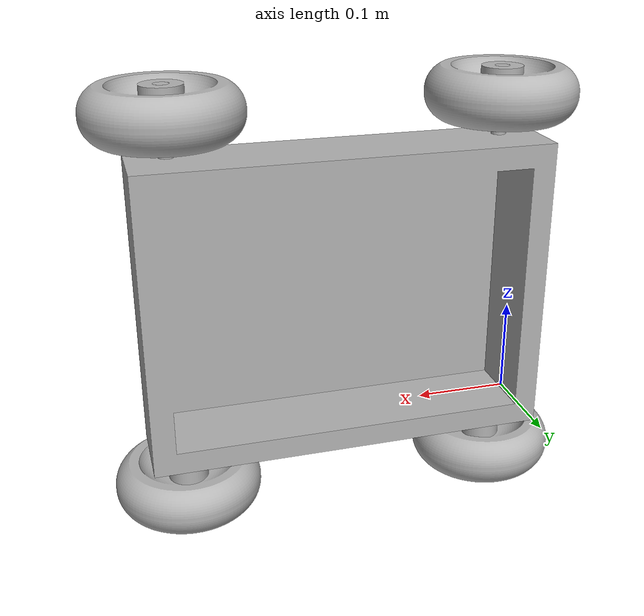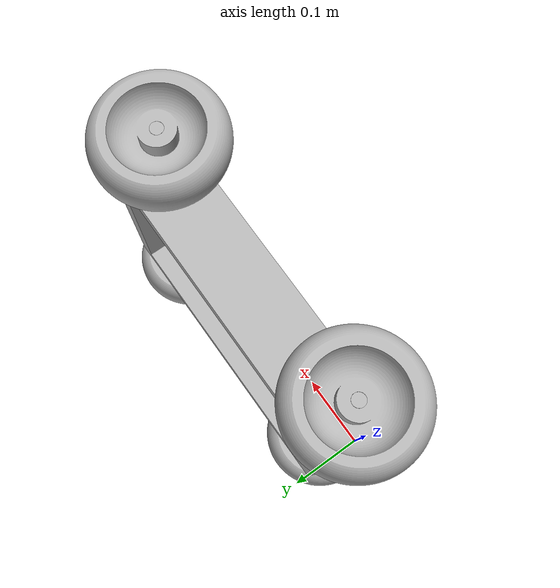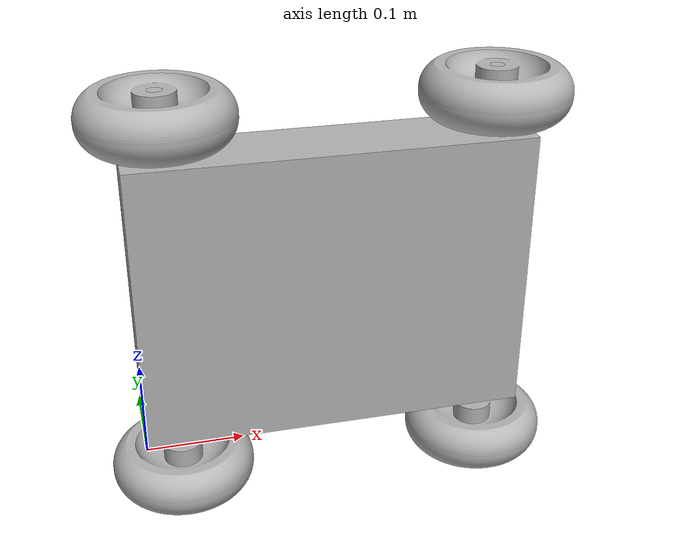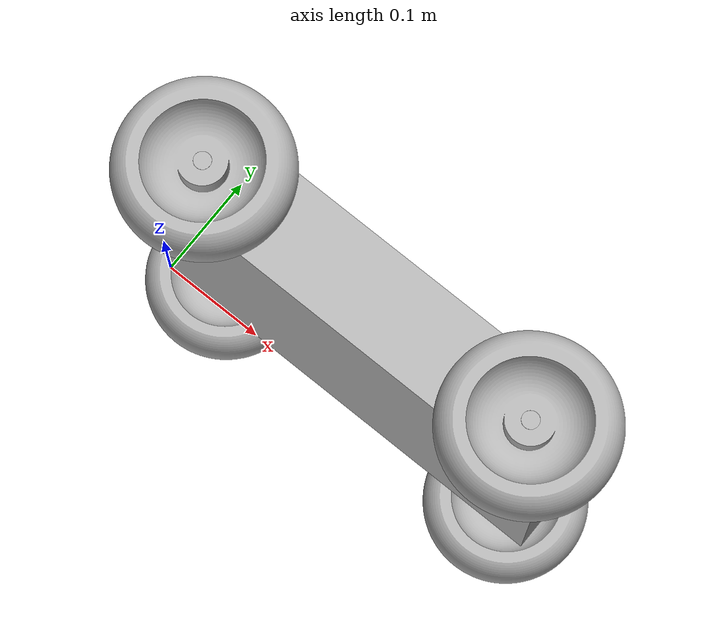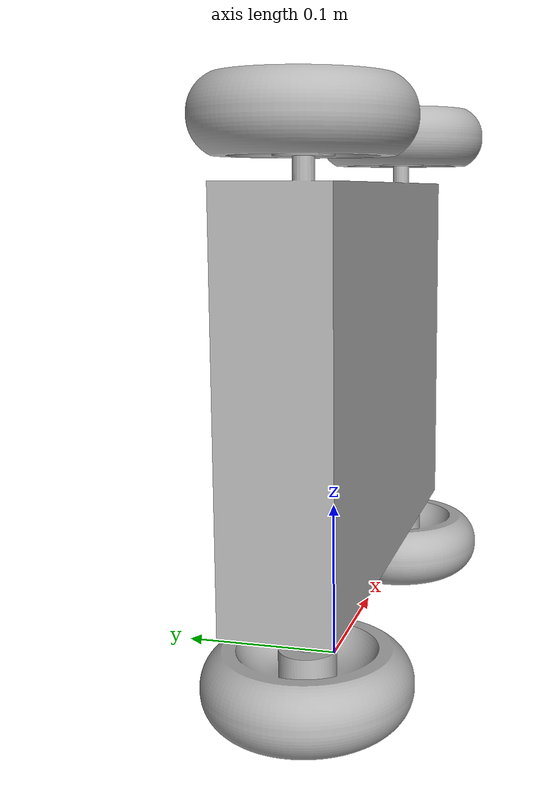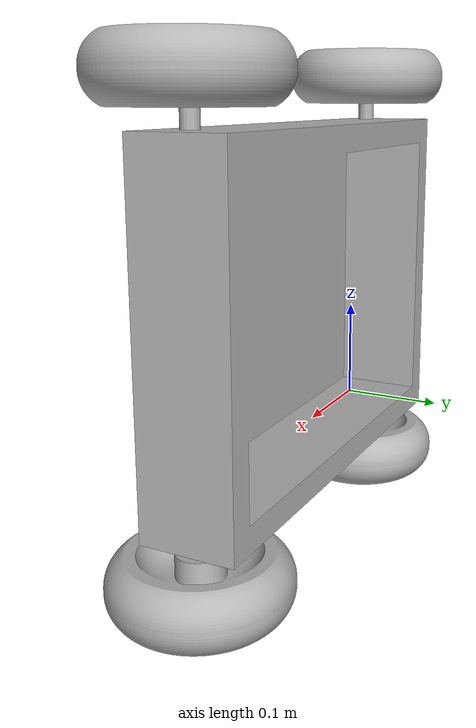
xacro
<?xml version="1.0" ?>
<robot name="(Sin" xmlns:xacro="http://www.ros.org/wiki/xacro">

<xacro:include filename="$(find (Sin_description)/urdf/materials.xacro" />
<xacro:include filename="$(find (Sin_description)/urdf/(Sin.trans" />
<xacro:include filename="$(find (Sin_description)/urdf/(Sin.gazebo" />
<link name="base_link">
  <inertial>
    <origin xyz="0.20250000000000004 0.0380842513185862 0.15249999999999994" rpy="0 0 0"/>
    <mass value="21.492746647635013"/>
    <inertia ixx="0.316201" iyy="0.772689" izz="0.482937" ixy="-0.0" iyz="-0.0" ixz="-0.0"/>
  </inertial>
  <visual>
    <origin xyz="0 0 0" rpy="0 0 0"/>
    <geometry>
      <mesh filename="package://(Sin_description/meshes/base_link.stl" scale="0.001 0.001 0.001"/>
    </geometry>
    <material name="silver"/>
  </visual>
  <collision>
    <origin xyz="0 0 0" rpy="0 0 0"/>
    <geometry>
      <mesh filename="package://(Sin_description/meshes/base_link.stl" scale="0.001 0.001 0.001"/>
    </geometry>
  </collision>
</link>

<link name="left_wheel_1">
  <inertial>
    <origin xyz="1.1296519275560968e-14 3.469446951953614e-18 0.025500000000000016" rpy="0 0 0"/>
    <mass value="4.902384911419855"/>
    <inertia ixx="0.008055" iyy="0.008055" izz="0.014592" ixy="-0.0" iyz="0.0" ixz="0.0"/>
  </inertial>
  <visual>
    <origin xyz="-0.0385 -0.0295 0.067" rpy="0 0 0"/>
    <geometry>
      <mesh filename="package://(Sin_description/meshes/left_wheel_1.stl" scale="0.001 0.001 0.001"/>
    </geometry>
    <material name="silver"/>
  </visual>
  <collision>
    <origin xyz="-0.0385 -0.0295 0.067" rpy="0 0 0"/>
    <geometry>
      <mesh filename="package://(Sin_description/meshes/left_wheel_1.stl" scale="0.001 0.001 0.001"/>
    </geometry>
  </collision>
</link>

<link name="left_wheel__1__1">
  <inertial>
    <origin xyz="1.1213252548714081e-14 3.469446951953614e-18 0.02549999999999994" rpy="0 0 0"/>
    <mass value="4.902384911419855"/>
    <inertia ixx="0.008055" iyy="0.008055" izz="0.014592" ixy="-0.0" iyz="0.0" ixz="-0.0"/>
  </inertial>
  <visual>
    <origin xyz="-0.3665 -0.0295 0.067" rpy="0 0 0"/>
    <geometry>
      <mesh filename="package://(Sin_description/meshes/left_wheel__1__1.stl" scale="0.001 0.001 0.001"/>
    </geometry>
    <material name="silver"/>
  </visual>
  <collision>
    <origin xyz="-0.3665 -0.0295 0.067" rpy="0 0 0"/>
    <geometry>
      <mesh filename="package://(Sin_description/meshes/left_wheel__1__1.stl" scale="0.001 0.001 0.001"/>
    </geometry>
  </collision>
</link>

<link name="rigth_wheel_1">
  <inertial>
    <origin xyz="1.1379786002407855e-14 -6.938893903907228e-18 -0.025500000000000078" rpy="0 0 0"/>
    <mass value="4.902384911419855"/>
    <inertia ixx="0.008055" iyy="0.008055" izz="0.014592" ixy="-0.0" iyz="-0.0" ixz="0.0"/>
  </inertial>
  <visual>
    <origin xyz="-0.3665 -0.0295 -0.372" rpy="0 0 0"/>
    <geometry>
      <mesh filename="package://(Sin_description/meshes/rigth_wheel_1.stl" scale="0.001 0.001 0.001"/>
    </geometry>
    <material name="silver"/>
  </visual>
  <collision>
    <origin xyz="-0.3665 -0.0295 -0.372" rpy="0 0 0"/>
    <geometry>
      <mesh filename="package://(Sin_description/meshes/rigth_wheel_1.stl" scale="0.001 0.001 0.001"/>
    </geometry>
  </collision>
</link>

<link name="rigth_wheel__1__1">
  <inertial>
    <origin xyz="-1.128958038165706e-14 -4.85722573273506e-17 -0.025499999999999967" rpy="0 0 0"/>
    <mass value="4.902384911419855"/>
    <inertia ixx="0.008055" iyy="0.008055" izz="0.014592" ixy="0.0" iyz="0.0" ixz="-0.0"/>
  </inertial>
  <visual>
    <origin xyz="-0.0385 -0.0295 -0.372" rpy="0 0 0"/>
    <geometry>
      <mesh filename="package://(Sin_description/meshes/rigth_wheel__1__1.stl" scale="0.001 0.001 0.001"/>
    </geometry>
    <material name="silver"/>
  </visual>
  <collision>
    <origin xyz="-0.0385 -0.0295 -0.372" rpy="0 0 0"/>
    <geometry>
      <mesh filename="package://(Sin_description/meshes/rigth_wheel__1__1.stl" scale="0.001 0.001 0.001"/>
    </geometry>
  </collision>
</link>

<joint name="Rígida 1" type="fixed">
  <origin xyz="0.0385 0.0295 -0.067" rpy="0 0 0"/>
  <parent link="base_link"/>
  <child link="left_wheel_1"/>
</joint>

<joint name="Rígida 2" type="fixed">
  <origin xyz="0.3665 0.0295 -0.067" rpy="0 0 0"/>
  <parent link="base_link"/>
  <child link="left_wheel__1__1"/>
</joint>

<joint name="Rígida 3" type="fixed">
  <origin xyz="0.3665 0.0295 0.372" rpy="0 0 0"/>
  <parent link="base_link"/>
  <child link="rigth_wheel_1"/>
</joint>

<joint name="Rígida 4" type="fixed">
  <origin xyz="0.0385 0.0295 0.372" rpy="0 0 0"/>
  <parent link="base_link"/>
  <child link="rigth_wheel__1__1"/>
</joint>

</robot>

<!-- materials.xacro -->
<robot name="(Sin" xmlns:xacro="http://www.ros.org/wiki/xacro" >

<material name="silver">
  <color rgba="0.700 0.700 0.700 1.000"/>
</material>

</robot>
